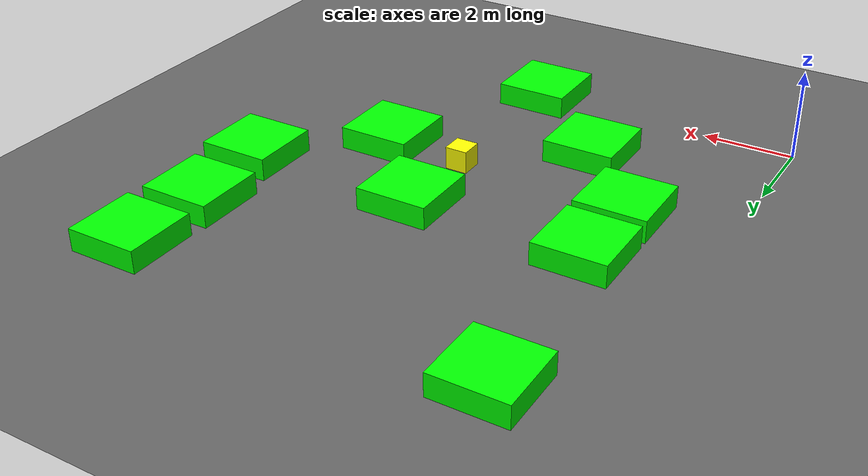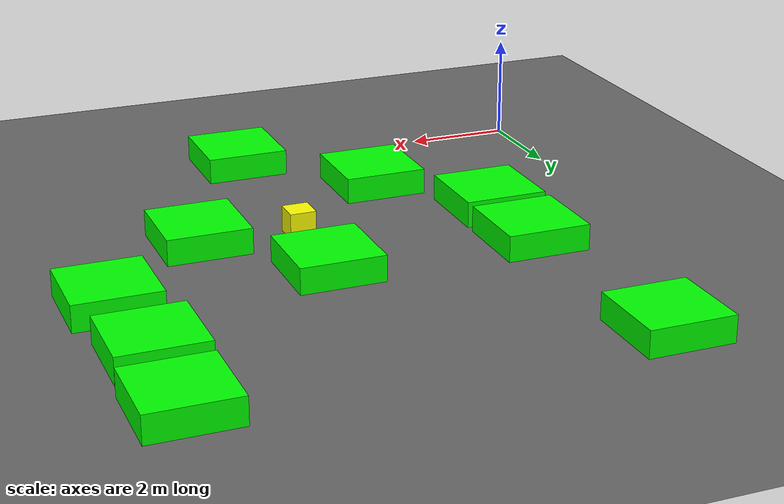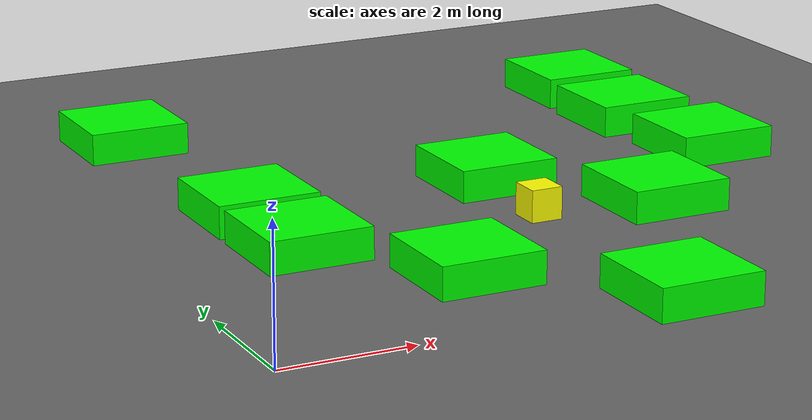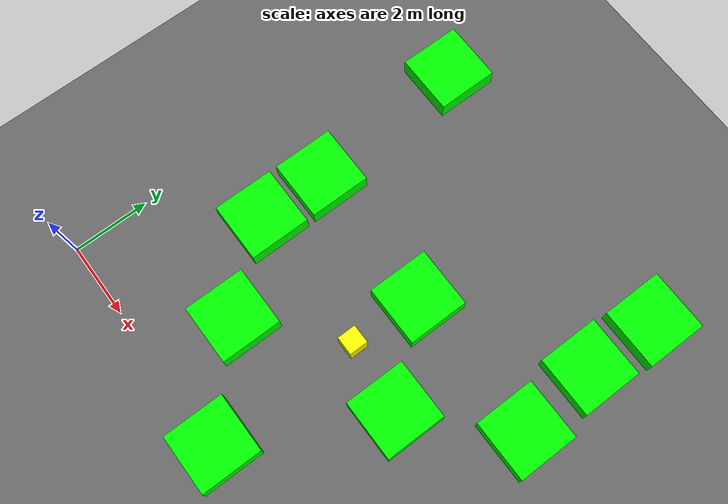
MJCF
<mujoco model="lvl5_corridor_obs10_d10_depth4_seed0">
    <compiler angle="degree" coordinate="local" inertiafromgeom="true"/>
    <option integrator="RK4" timestep="0.01"/>

    <asset>
        <texture builtin="gradient" height="100" rgb1="0.6 0.8 1" rgb2="0 0 0" type="skybox" width="100"/>
        <texture name="floor_texture" type="2d" builtin="checker" width="100" height="100" rgb1="0 0 0" rgb2="0.8 0.8 0.8"/>
        <material name="MatPlane" reflectance="0.5" shininess="1" specular="1" texrepeat="10 10" texture="floor_texture"/>
    </asset>

    <!-- Excluding the contact between the agent and the goal, and the agent and the floor -->
    <contact>
        <exclude body1="agent" body2="goal"/>
        <exclude body1 = "agent" body2 = "floor"/>
    </contact>

    <extension>
        <plugin plugin = "mujoco.pid">
            <instance name = "pid1">
                <config key="kp" value="2"/>
                <config key="ki" value="0"/>
                <config key="kd" value="55"/>
            </instance>
        </plugin>
    </extension>

    <worldbody>
        <light cutoff="100" diffuse="1 1 1" dir="-0 0 -1.3" directional="true" exponent="1" pos="0 0 1.3" specular=".1 .1 .1"/>
        <body name="floor" pos="0 0 0">
            <geom name="floor_geom" type="plane" size="20 20 0.1" material="MatPlane"/>
        </body>

                <body name="goal" pos="12.0000 -12.0000 0">
            <geom name="goal_geom" type="plane" size="0.5 0.5 1" pos="0 0 0" rgba="1 0 0 1"/>
        </body>

                <body name="agent" pos="6.0000 4.0000 0.250">
            <joint name="j1" type="slide" axis ="1 0 0 "/>
            <joint name="j2" type="slide" axis ="0 1 0 "/>
            <geom name="agent_geom" type="box" size="0.25 0.25 0.250" rgba="1 1 0 1"/>
        </body>

        <body name="obstacle1" pos="1.8049 10.1925 0.250">  <geom name="obstacle1_geom" type="box" size="0.8000 0.8000 0.250" rgba="0 1 0 1"/></body>
        <body name="obstacle2" pos="9.8983 9.9293 0.250">  <geom name="obstacle2_geom" type="box" size="0.8000 0.8000 0.250" rgba="0 1 0 1"/></body>
        <body name="obstacle3" pos="9.8318 7.9940 0.250">  <geom name="obstacle3_geom" type="box" size="0.8000 0.8000 0.250" rgba="0 1 0 1"/></body>
        <body name="obstacle4" pos="2.1646 5.8920 0.250">  <geom name="obstacle4_geom" type="box" size="0.8000 0.8000 0.250" rgba="0 1 0 1"/></body>
        <body name="obstacle5" pos="6.1006 5.8563 0.250">  <geom name="obstacle5_geom" type="box" size="0.8000 0.8000 0.250" rgba="0 1 0 1"/></body>
        <body name="obstacle6" pos="10.0460 5.8960 0.250">  <geom name="obstacle6_geom" type="box" size="0.8000 0.8000 0.250" rgba="0 1 0 1"/></body>
        <body name="obstacle7" pos="2.1654 4.0942 0.250">  <geom name="obstacle7_geom" type="box" size="0.8000 0.8000 0.250" rgba="0 1 0 1"/></body>
        <body name="obstacle8" pos="7.8818 3.8084 0.250">  <geom name="obstacle8_geom" type="box" size="0.8000 0.8000 0.250" rgba="0 1 0 1"/></body>
        <body name="obstacle9" pos="3.8156 2.1051 0.250">  <geom name="obstacle9_geom" type="box" size="0.8000 0.8000 0.250" rgba="0 1 0 1"/></body>
        <body name="obstacle10" pos="5.9886 0.0563 0.250">  <geom name="obstacle10_geom" type="box" size="0.8000 0.8000 0.250" rgba="0 1 0 1"/></body>

    </worldbody>

    <sensor>
<!-- SENSORS -->

        <distance name="dist1" geom1="agent_geom" geom2="obstacle1_geom" cutoff="1.5"/>
        <distance name="dist2" geom1="agent_geom" geom2="obstacle2_geom" cutoff="1.5"/>
        <distance name="dist3" geom1="agent_geom" geom2="obstacle3_geom" cutoff="1.5"/>
        <distance name="dist4" geom1="agent_geom" geom2="obstacle4_geom" cutoff="1.5"/>
        <distance name="dist5" geom1="agent_geom" geom2="obstacle5_geom" cutoff="1.5"/>
        <distance name="dist6" geom1="agent_geom" geom2="obstacle6_geom" cutoff="1.5"/>
        <distance name="dist7" geom1="agent_geom" geom2="obstacle7_geom" cutoff="1.5"/>
        <distance name="dist8" geom1="agent_geom" geom2="obstacle8_geom" cutoff="1.5"/>
        <distance name="dist9" geom1="agent_geom" geom2="obstacle9_geom" cutoff="1.5"/>
        <distance name="dist10" geom1="agent_geom" geom2="obstacle10_geom" cutoff="1.5"/>
</sensor>

    <actuator>
        <plugin joint="j1" plugin="mujoco.pid" instance="pid1" />
        <plugin joint="j2" plugin="mujoco.pid" instance="pid1"/>
    </actuator>
</mujoco>
